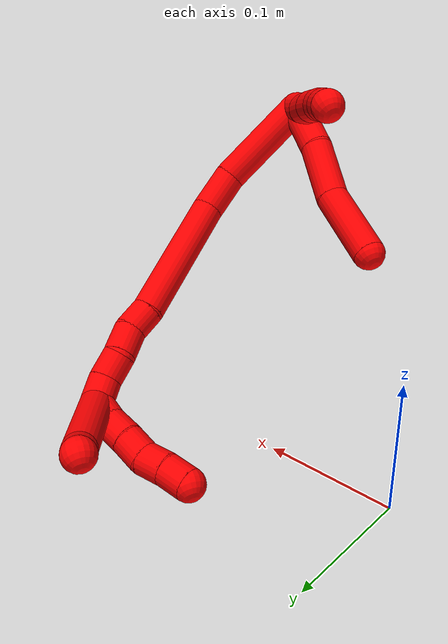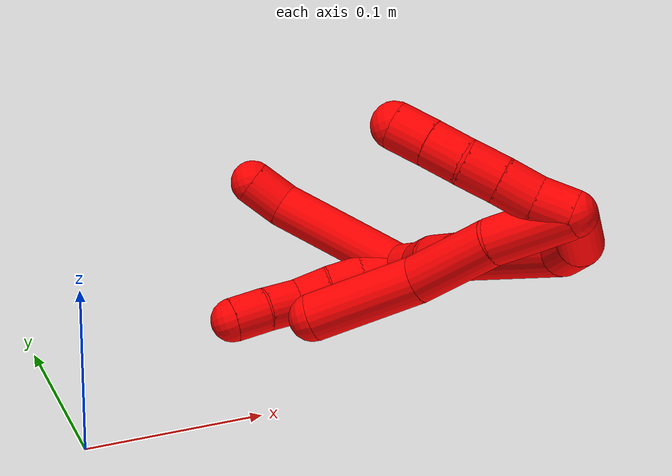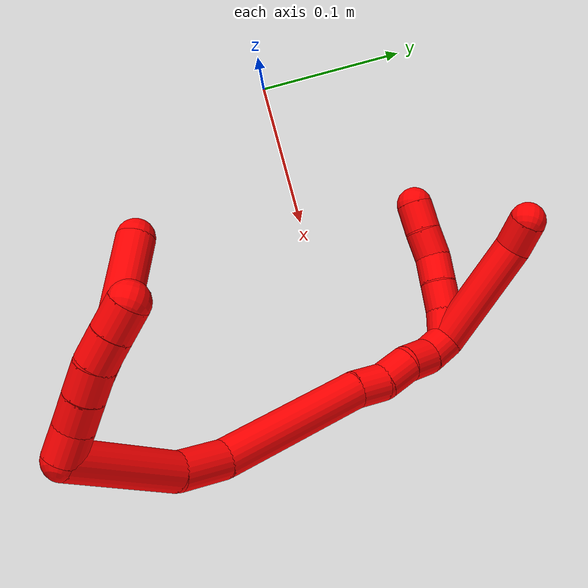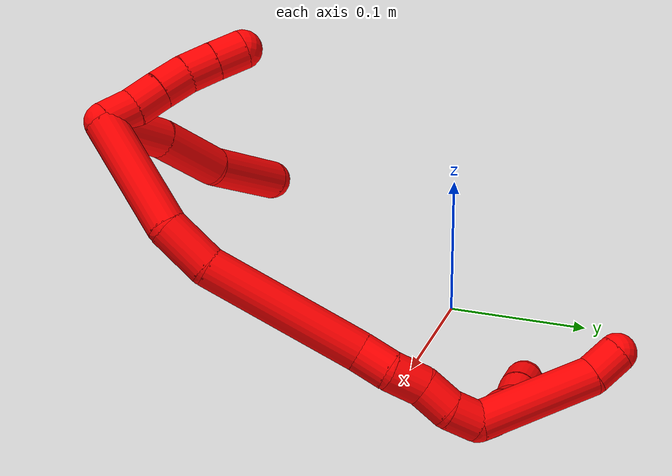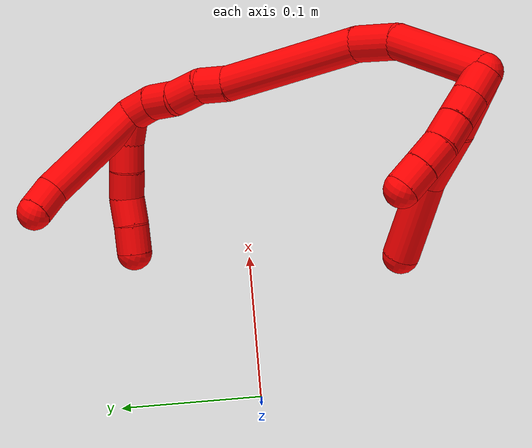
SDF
<sdf version="1.7">
 <world name="default">
  <model name="2">
   <static>0</static>
   <link name="2">
    <collision name="collision-cylinder-e_1_2_8">
     <pose>-0.000176 6.6e-05 -0.022686 -3.1387 -0.007743 2.42687</pose>
     <geometry><cylinder><radius>0.0125</radius><length>0.045374</length></cylinder></geometry>
     <surface>
      <friction><ode><mu>1.16</mu><mu2>1.16</mu2><slip1>0</slip1><slip2>0</slip2></ode></friction>
      <contact><ode><kp>1e+06</kp><kd>1</kd><max_vel>0</max_vel><min_depth>0.001</min_depth></ode></contact>
     </surface>
    </collision>
    <visual name="visual-cylinder-e_1_2_8">
     <pose>-0.000176 6.6e-05 -0.022686 -3.1387 -0.007743 2.42687</pose>
     <geometry><cylinder><radius>0.0125</radius><length>0.045374</length></cylinder></geometry>
     <material><ambient>1 0 0 1</ambient></material>
    </visual>
    <collision name="collision-cylinder-e_2_8_9">
     <pose>0.000243 0.00427 -0.068212 -2.96234 0.025583 -0.282789</pose>
     <geometry><cylinder><radius>0.0125</radius><length>0.046439</length></cylinder></geometry>
     <surface>
      <friction><ode><mu>1.16</mu><mu2>1.16</mu2><slip1>0</slip1><slip2>0</slip2></ode></friction>
      <contact><ode><kp>1e+06</kp><kd>1</kd><max_vel>0</max_vel><min_depth>0.001</min_depth></ode></contact>
     </surface>
    </collision>
    <visual name="visual-cylinder-e_2_8_9">
     <pose>0.000243 0.00427 -0.068212 -2.96234 0.025583 -0.282789</pose>
     <geometry><cylinder><radius>0.0125</radius><length>0.046439</length></cylinder></geometry>
     <material><ambient>1 0 0 1</ambient></material>
    </visual>
    <collision name="collision-cylinder-e_3_9_6">
     <pose>0.002739 0.006447 -0.120017 3.07397 0.065442 1.53797</pose>
     <geometry><cylinder><radius>0.0125</radius><length>0.058188</length></cylinder></geometry>
     <surface>
      <friction><ode><mu>1.16</mu><mu2>1.16</mu2><slip1>0</slip1><slip2>0</slip2></ode></friction>
      <contact><ode><kp>1e+06</kp><kd>1</kd><max_vel>0</max_vel><min_depth>0.001</min_depth></ode></contact>
     </surface>
    </collision>
    <visual name="visual-cylinder-e_3_9_6">
     <pose>0.002739 0.006447 -0.120017 3.07397 0.065442 1.53797</pose>
     <geometry><cylinder><radius>0.0125</radius><length>0.058188</length></cylinder></geometry>
     <material><ambient>1 0 0 1</ambient></material>
    </visual>
    <collision name="collision-cylinder-e_1_2_10">
     <pose>-0.004323 -0.005039 -0.007478 2.54862 -0.447001 -1.27936</pose>
     <geometry><cylinder><radius>0.0125</radius><length>0.02</length></cylinder></geometry>
     <surface>
      <friction><ode><mu>1.16</mu><mu2>1.16</mu2><slip1>0</slip1><slip2>0</slip2></ode></friction>
      <contact><ode><kp>1e+06</kp><kd>1</kd><max_vel>0</max_vel><min_depth>0.001</min_depth></ode></contact>
     </surface>
    </collision>
    <visual name="visual-cylinder-e_1_2_10">
     <pose>-0.004323 -0.005039 -0.007478 2.54862 -0.447001 -1.27936</pose>
     <geometry><cylinder><radius>0.0125</radius><length>0.02</length></cylinder></geometry>
     <material><ambient>1 0 0 1</ambient></material>
    </visual>
    <collision name="collision-cylinder-e_2_10_11">
     <pose>-0.013597 -0.016018 -0.021296 2.38877 -0.518051 -1.18116</pose>
     <geometry><cylinder><radius>0.0125</radius><length>0.02</length></cylinder></geometry>
     <surface>
      <friction><ode><mu>1.16</mu><mu2>1.16</mu2><slip1>0</slip1><slip2>0</slip2></ode></friction>
      <contact><ode><kp>1e+06</kp><kd>1</kd><max_vel>0</max_vel><min_depth>0.001</min_depth></ode></contact>
     </surface>
    </collision>
    <visual name="visual-cylinder-e_2_10_11">
     <pose>-0.013597 -0.016018 -0.021296 2.38877 -0.518051 -1.18116</pose>
     <geometry><cylinder><radius>0.0125</radius><length>0.02</length></cylinder></geometry>
     <material><ambient>1 0 0 1</ambient></material>
    </visual>
    <collision name="collision-cylinder-e_3_11_12">
     <pose>-0.023379 -0.027667 -0.034275 2.43142 -0.504126 -1.21411</pose>
     <geometry><cylinder><radius>0.0125</radius><length>0.02</length></cylinder></geometry>
     <surface>
      <friction><ode><mu>1.16</mu><mu2>1.16</mu2><slip1>0</slip1><slip2>0</slip2></ode></friction>
      <contact><ode><kp>1e+06</kp><kd>1</kd><max_vel>0</max_vel><min_depth>0.001</min_depth></ode></contact>
     </surface>
    </collision>
    <visual name="visual-cylinder-e_3_11_12">
     <pose>-0.023379 -0.027667 -0.034275 2.43142 -0.504126 -1.21411</pose>
     <geometry><cylinder><radius>0.0125</radius><length>0.02</length></cylinder></geometry>
     <material><ambient>1 0 0 1</ambient></material>
    </visual>
    <collision name="collision-cylinder-e_4_12_13">
     <pose>-0.033949 -0.037791 -0.047811 2.57214 -0.611335 -1.646</pose>
     <geometry><cylinder><radius>0.0125</radius><length>0.02</length></cylinder></geometry>
     <surface>
      <friction><ode><mu>1.16</mu><mu2>1.16</mu2><slip1>0</slip1><slip2>0</slip2></ode></friction>
      <contact><ode><kp>1e+06</kp><kd>1</kd><max_vel>0</max_vel><min_depth>0.001</min_depth></ode></contact>
     </surface>
    </collision>
    <visual name="visual-cylinder-e_4_12_13">
     <pose>-0.033949 -0.037791 -0.047811 2.57214 -0.611335 -1.646</pose>
     <geometry><cylinder><radius>0.0125</radius><length>0.02</length></cylinder></geometry>
     <material><ambient>1 0 0 1</ambient></material>
    </visual>
    <collision name="collision-cylinder-e_5_13_5">
     <pose>-0.045408 -0.04642 -0.061746 2.60205 -0.608833 -1.69817</pose>
     <geometry><cylinder><radius>0.0125</radius><length>0.02</length></cylinder></geometry>
     <surface>
      <friction><ode><mu>1.16</mu><mu2>1.16</mu2><slip1>0</slip1><slip2>0</slip2></ode></friction>
      <contact><ode><kp>1e+06</kp><kd>1</kd><max_vel>0</max_vel><min_depth>0.001</min_depth></ode></contact>
     </surface>
    </collision>
    <visual name="visual-cylinder-e_5_13_5">
     <pose>-0.045408 -0.04642 -0.061746 2.60205 -0.608833 -1.69817</pose>
     <geometry><cylinder><radius>0.0125</radius><length>0.02</length></cylinder></geometry>
     <material><ambient>1 0 0 1</ambient></material>
    </visual>
    <collision name="collision-cylinder-e_1_2_14">
     <pose>-0.01419 0.034035 -0.011916 -1.90757 -0.374897 0.522523</pose>
     <geometry><cylinder><radius>0.0125</radius><length>0.077504</length></cylinder></geometry>
     <surface>
      <friction><ode><mu>1.16</mu><mu2>1.16</mu2><slip1>0</slip1><slip2>0</slip2></ode></friction>
      <contact><ode><kp>1e+06</kp><kd>1</kd><max_vel>0</max_vel><min_depth>0.001</min_depth></ode></contact>
     </surface>
    </collision>
    <visual name="visual-cylinder-e_1_2_14">
     <pose>-0.01419 0.034035 -0.011916 -1.90757 -0.374897 0.522523</pose>
     <geometry><cylinder><radius>0.0125</radius><length>0.077504</length></cylinder></geometry>
     <material><ambient>1 0 0 1</ambient></material>
    </visual>
    <collision name="collision-cylinder-e_2_14_15">
     <pose>-0.03524 0.080024 -0.033467 -2.24912 -0.420183 0.838564</pose>
     <geometry><cylinder><radius>0.0125</radius><length>0.033634</length></cylinder></geometry>
     <surface>
      <friction><ode><mu>1.16</mu><mu2>1.16</mu2><slip1>0</slip1><slip2>0</slip2></ode></friction>
      <contact><ode><kp>1e+06</kp><kd>1</kd><max_vel>0</max_vel><min_depth>0.001</min_depth></ode></contact>
     </surface>
    </collision>
    <visual name="visual-cylinder-e_2_14_15">
     <pose>-0.03524 0.080024 -0.033467 -2.24912 -0.420183 0.838564</pose>
     <geometry><cylinder><radius>0.0125</radius><length>0.033634</length></cylinder></geometry>
     <material><ambient>1 0 0 1</ambient></material>
    </visual>
    <collision name="collision-cylinder-e_3_15_16">
     <pose>-0.067892 0.117674 -0.080021 -2.5336 -0.520624 1.40785</pose>
     <geometry><cylinder><radius>0.0125</radius><length>0.103701</length></cylinder></geometry>
     <surface>
      <friction><ode><mu>1.16</mu><mu2>1.16</mu2><slip1>0</slip1><slip2>0</slip2></ode></friction>
      <contact><ode><kp>1e+06</kp><kd>1</kd><max_vel>0</max_vel><min_depth>0.001</min_depth></ode></contact>
     </surface>
    </collision>
    <visual name="visual-cylinder-e_3_15_16">
     <pose>-0.067892 0.117674 -0.080021 -2.5336 -0.520624 1.40785</pose>
     <geometry><cylinder><radius>0.0125</radius><length>0.103701</length></cylinder></geometry>
     <material><ambient>1 0 0 1</ambient></material>
    </visual>
    <collision name="collision-cylinder-e_4_16_17">
     <pose>-0.10001 0.149501 -0.122982 -2.34863 -0.633755 1.32895</pose>
     <geometry><cylinder><radius>0.0125</radius><length>0.021367</length></cylinder></geometry>
     <surface>
      <friction><ode><mu>1.16</mu><mu2>1.16</mu2><slip1>0</slip1><slip2>0</slip2></ode></friction>
      <contact><ode><kp>1e+06</kp><kd>1</kd><max_vel>0</max_vel><min_depth>0.001</min_depth></ode></contact>
     </surface>
    </collision>
    <visual name="visual-cylinder-e_4_16_17">
     <pose>-0.10001 0.149501 -0.122982 -2.34863 -0.633755 1.32895</pose>
     <geometry><cylinder><radius>0.0125</radius><length>0.021367</length></cylinder></geometry>
     <material><ambient>1 0 0 1</ambient></material>
    </visual>
    <collision name="collision-cylinder-e_5_17_18">
     <pose>-0.111338 0.160152 -0.138011 -2.67576 -0.461436 1.56096</pose>
     <geometry><cylinder><radius>0.0125</radius><length>0.022468</length></cylinder></geometry>
     <surface>
      <friction><ode><mu>1.16</mu><mu2>1.16</mu2><slip1>0</slip1><slip2>0</slip2></ode></friction>
      <contact><ode><kp>1e+06</kp><kd>1</kd><max_vel>0</max_vel><min_depth>0.001</min_depth></ode></contact>
     </surface>
    </collision>
    <visual name="visual-cylinder-e_5_17_18">
     <pose>-0.111338 0.160152 -0.138011 -2.67576 -0.461436 1.56096</pose>
     <geometry><cylinder><radius>0.0125</radius><length>0.022468</length></cylinder></geometry>
     <material><ambient>1 0 0 1</ambient></material>
    </visual>
    <collision name="collision-cylinder-e_6_18_19">
     <pose>-0.120409 0.171607 -0.153858 -2.35067 -0.395138 0.894277</pose>
     <geometry><cylinder><radius>0.0125</radius><length>0.02114</length></cylinder></geometry>
     <surface>
      <friction><ode><mu>1.16</mu><mu2>1.16</mu2><slip1>0</slip1><slip2>0</slip2></ode></friction>
      <contact><ode><kp>1e+06</kp><kd>1</kd><max_vel>0</max_vel><min_depth>0.001</min_depth></ode></contact>
     </surface>
    </collision>
    <visual name="visual-cylinder-e_6_18_19">
     <pose>-0.120409 0.171607 -0.153858 -2.35067 -0.395138 0.894277</pose>
     <geometry><cylinder><radius>0.0125</radius><length>0.02114</length></cylinder></geometry>
     <material><ambient>1 0 0 1</ambient></material>
    </visual>
    <collision name="collision-cylinder-e_7_19_1">
     <pose>-0.12862 0.18224 -0.169147 -2.72821 -0.422896 1.59423</pose>
     <geometry><cylinder><radius>0.0125</radius><length>0.020186</length></cylinder></geometry>
     <surface>
      <friction><ode><mu>1.16</mu><mu2>1.16</mu2><slip1>0</slip1><slip2>0</slip2></ode></friction>
      <contact><ode><kp>1e+06</kp><kd>1</kd><max_vel>0</max_vel><min_depth>0.001</min_depth></ode></contact>
     </surface>
    </collision>
    <visual name="visual-cylinder-e_7_19_1">
     <pose>-0.12862 0.18224 -0.169147 -2.72821 -0.422896 1.59423</pose>
     <geometry><cylinder><radius>0.0125</radius><length>0.020186</length></cylinder></geometry>
     <material><ambient>1 0 0 1</ambient></material>
    </visual>
    <collision name="collision-cylinder-e_1_1_20">
     <pose>-0.156574 0.172673 -0.20535 2.69606 -0.658455 -1.97065</pose>
     <geometry><cylinder><radius>0.0125</radius><length>0.07783</length></cylinder></geometry>
     <surface>
      <friction><ode><mu>1.16</mu><mu2>1.16</mu2><slip1>0</slip1><slip2>0</slip2></ode></friction>
      <contact><ode><kp>1e+06</kp><kd>1</kd><max_vel>0</max_vel><min_depth>0.001</min_depth></ode></contact>
     </surface>
    </collision>
    <visual name="visual-cylinder-e_1_1_20">
     <pose>-0.156574 0.172673 -0.20535 2.69606 -0.658455 -1.97065</pose>
     <geometry><cylinder><radius>0.0125</radius><length>0.07783</length></cylinder></geometry>
     <material><ambient>1 0 0 1</ambient></material>
    </visual>
    <collision name="collision-cylinder-e_2_20_4">
     <pose>-0.186719 0.152509 -0.239054 2.28064 -0.608093 -1.19887</pose>
     <geometry><cylinder><radius>0.0125</radius><length>0.02217</length></cylinder></geometry>
     <surface>
      <friction><ode><mu>1.16</mu><mu2>1.16</mu2><slip1>0</slip1><slip2>0</slip2></ode></friction>
      <contact><ode><kp>1e+06</kp><kd>1</kd><max_vel>0</max_vel><min_depth>0.001</min_depth></ode></contact>
     </surface>
    </collision>
    <visual name="visual-cylinder-e_2_20_4">
     <pose>-0.186719 0.152509 -0.239054 2.28064 -0.608093 -1.19887</pose>
     <geometry><cylinder><radius>0.0125</radius><length>0.02217</length></cylinder></geometry>
     <material><ambient>1 0 0 1</ambient></material>
    </visual>
    <collision name="collision-cylinder-e_1_1_21">
     <pose>-0.131473 0.183311 -0.187138 2.87357 0.129255 0.895095</pose>
     <geometry><cylinder><radius>0.0125</radius><length>0.02</length></cylinder></geometry>
     <surface>
      <friction><ode><mu>1.16</mu><mu2>1.16</mu2><slip1>0</slip1><slip2>0</slip2></ode></friction>
      <contact><ode><kp>1e+06</kp><kd>1</kd><max_vel>0</max_vel><min_depth>0.001</min_depth></ode></contact>
     </surface>
    </collision>
    <visual name="visual-cylinder-e_1_1_21">
     <pose>-0.131473 0.183311 -0.187138 2.87357 0.129255 0.895095</pose>
     <geometry><cylinder><radius>0.0125</radius><length>0.02</length></cylinder></geometry>
     <material><ambient>1 0 0 1</ambient></material>
    </visual>
    <collision name="collision-cylinder-e_2_21_22">
     <pose>-0.127859 0.176941 -0.205677 2.74636 0.23461 1.06393</pose>
     <geometry><cylinder><radius>0.0125</radius><length>0.02</length></cylinder></geometry>
     <surface>
      <friction><ode><mu>1.16</mu><mu2>1.16</mu2><slip1>0</slip1><slip2>0</slip2></ode></friction>
      <contact><ode><kp>1e+06</kp><kd>1</kd><max_vel>0</max_vel><min_depth>0.001</min_depth></ode></contact>
     </surface>
    </collision>
    <visual name="visual-cylinder-e_2_21_22">
     <pose>-0.127859 0.176941 -0.205677 2.74636 0.23461 1.06393</pose>
     <geometry><cylinder><radius>0.0125</radius><length>0.02</length></cylinder></geometry>
     <material><ambient>1 0 0 1</ambient></material>
    </visual>
    <collision name="collision-cylinder-e_3_22_23">
     <pose>-0.122916 0.170356 -0.223877 2.84293 0.264977 1.44983</pose>
     <geometry><cylinder><radius>0.0125</radius><length>0.02</length></cylinder></geometry>
     <surface>
      <friction><ode><mu>1.16</mu><mu2>1.16</mu2><slip1>0</slip1><slip2>0</slip2></ode></friction>
      <contact><ode><kp>1e+06</kp><kd>1</kd><max_vel>0</max_vel><min_depth>0.001</min_depth></ode></contact>
     </surface>
    </collision>
    <visual name="visual-cylinder-e_3_22_23">
     <pose>-0.122916 0.170356 -0.223877 2.84293 0.264977 1.44983</pose>
     <geometry><cylinder><radius>0.0125</radius><length>0.02</length></cylinder></geometry>
     <material><ambient>1 0 0 1</ambient></material>
    </visual>
    <collision name="collision-cylinder-e_4_23_24">
     <pose>-0.117226 0.161817 -0.240722 2.49946 0.312121 0.883797</pose>
     <geometry><cylinder><radius>0.0125</radius><length>0.02</length></cylinder></geometry>
     <surface>
      <friction><ode><mu>1.16</mu><mu2>1.16</mu2><slip1>0</slip1><slip2>0</slip2></ode></friction>
      <contact><ode><kp>1e+06</kp><kd>1</kd><max_vel>0</max_vel><min_depth>0.001</min_depth></ode></contact>
     </surface>
    </collision>
    <visual name="visual-cylinder-e_4_23_24">
     <pose>-0.117226 0.161817 -0.240722 2.49946 0.312121 0.883797</pose>
     <geometry><cylinder><radius>0.0125</radius><length>0.02</length></cylinder></geometry>
     <material><ambient>1 0 0 1</ambient></material>
    </visual>
    <collision name="collision-cylinder-e_5_24_3">
     <pose>-0.111154 0.151346 -0.256603 2.61781 0.304805 1.04066</pose>
     <geometry><cylinder><radius>0.0125</radius><length>0.02</length></cylinder></geometry>
     <surface>
      <friction><ode><mu>1.16</mu><mu2>1.16</mu2><slip1>0</slip1><slip2>0</slip2></ode></friction>
      <contact><ode><kp>1e+06</kp><kd>1</kd><max_vel>0</max_vel><min_depth>0.001</min_depth></ode></contact>
     </surface>
    </collision>
    <visual name="visual-cylinder-e_5_24_3">
     <pose>-0.111154 0.151346 -0.256603 2.61781 0.304805 1.04066</pose>
     <geometry><cylinder><radius>0.0125</radius><length>0.02</length></cylinder></geometry>
     <material><ambient>1 0 0 1</ambient></material>
    </visual>
    <collision name="collision-sphere-3">
     <pose>-0.108153 0.146575 -0.264864 0 -0 0</pose>
     <geometry><sphere><radius>0.0125</radius></sphere></geometry>
     <surface>
      <friction><ode><mu>1.16</mu><mu2>1.16</mu2><slip1>0</slip1><slip2>0</slip2></ode></friction>
      <contact><ode><kp>1e+06</kp><kd>1</kd><max_vel>0</max_vel><min_depth>0.001</min_depth></ode></contact>
     </surface>
    </collision>
    <visual name="visual-sphere-3">
     <pose>-0.108153 0.146575 -0.264864 0 -0 0</pose>
     <geometry><sphere><radius>0.0125</radius></sphere></geometry>
     <material><ambient>1 0 0 1</ambient></material>
    </visual>
    <collision name="collision-sphere-24">
     <pose>-0.114155 0.156117 -0.248343 0 -0 0</pose>
     <geometry><sphere><radius>0.0125</radius></sphere></geometry>
     <surface>
      <friction><ode><mu>1.16</mu><mu2>1.16</mu2><slip1>0</slip1><slip2>0</slip2></ode></friction>
      <contact><ode><kp>1e+06</kp><kd>1</kd><max_vel>0</max_vel><min_depth>0.001</min_depth></ode></contact>
     </surface>
    </collision>
    <visual name="visual-sphere-24">
     <pose>-0.114155 0.156117 -0.248343 0 -0 0</pose>
     <geometry><sphere><radius>0.0125</radius></sphere></geometry>
     <material><ambient>1 0 0 1</ambient></material>
    </visual>
    <collision name="collision-sphere-23">
     <pose>-0.120297 0.167516 -0.233101 0 -0 0</pose>
     <geometry><sphere><radius>0.0125</radius></sphere></geometry>
     <surface>
      <friction><ode><mu>1.16</mu><mu2>1.16</mu2><slip1>0</slip1><slip2>0</slip2></ode></friction>
      <contact><ode><kp>1e+06</kp><kd>1</kd><max_vel>0</max_vel><min_depth>0.001</min_depth></ode></contact>
     </surface>
    </collision>
    <visual name="visual-sphere-23">
     <pose>-0.120297 0.167516 -0.233101 0 -0 0</pose>
     <geometry><sphere><radius>0.0125</radius></sphere></geometry>
     <material><ambient>1 0 0 1</ambient></material>
    </visual>
    <collision name="collision-sphere-22">
     <pose>-0.125535 0.173196 -0.214653 0 -0 0</pose>
     <geometry><sphere><radius>0.0125</radius></sphere></geometry>
     <surface>
      <friction><ode><mu>1.16</mu><mu2>1.16</mu2><slip1>0</slip1><slip2>0</slip2></ode></friction>
      <contact><ode><kp>1e+06</kp><kd>1</kd><max_vel>0</max_vel><min_depth>0.001</min_depth></ode></contact>
     </surface>
    </collision>
    <visual name="visual-sphere-22">
     <pose>-0.125535 0.173196 -0.214653 0 -0 0</pose>
     <geometry><sphere><radius>0.0125</radius></sphere></geometry>
     <material><ambient>1 0 0 1</ambient></material>
    </visual>
    <collision name="collision-sphere-21">
     <pose>-0.130184 0.180685 -0.196701 0 -0 0</pose>
     <geometry><sphere><radius>0.0125</radius></sphere></geometry>
     <surface>
      <friction><ode><mu>1.16</mu><mu2>1.16</mu2><slip1>0</slip1><slip2>0</slip2></ode></friction>
      <contact><ode><kp>1e+06</kp><kd>1</kd><max_vel>0</max_vel><min_depth>0.001</min_depth></ode></contact>
     </surface>
    </collision>
    <visual name="visual-sphere-21">
     <pose>-0.130184 0.180685 -0.196701 0 -0 0</pose>
     <geometry><sphere><radius>0.0125</radius></sphere></geometry>
     <material><ambient>1 0 0 1</ambient></material>
    </visual>
    <collision name="collision-sphere-4">
     <pose>-0.193052 0.145609 -0.244983 0 -0 0</pose>
     <geometry><sphere><radius>0.0125</radius></sphere></geometry>
     <surface>
      <friction><ode><mu>1.16</mu><mu2>1.16</mu2><slip1>0</slip1><slip2>0</slip2></ode></friction>
      <contact><ode><kp>1e+06</kp><kd>1</kd><max_vel>0</max_vel><min_depth>0.001</min_depth></ode></contact>
     </surface>
    </collision>
    <visual name="visual-sphere-4">
     <pose>-0.193052 0.145609 -0.244983 0 -0 0</pose>
     <geometry><sphere><radius>0.0125</radius></sphere></geometry>
     <material><ambient>1 0 0 1</ambient></material>
    </visual>
    <collision name="collision-sphere-20">
     <pose>-0.180386 0.159409 -0.233125 0 -0 0</pose>
     <geometry><sphere><radius>0.0125</radius></sphere></geometry>
     <surface>
      <friction><ode><mu>1.16</mu><mu2>1.16</mu2><slip1>0</slip1><slip2>0</slip2></ode></friction>
      <contact><ode><kp>1e+06</kp><kd>1</kd><max_vel>0</max_vel><min_depth>0.001</min_depth></ode></contact>
     </surface>
    </collision>
    <visual name="visual-sphere-20">
     <pose>-0.180386 0.159409 -0.233125 0 -0 0</pose>
     <geometry><sphere><radius>0.0125</radius></sphere></geometry>
     <material><ambient>1 0 0 1</ambient></material>
    </visual>
    <collision name="collision-sphere-11">
     <pose>-0.018549 -0.021958 -0.027636 0 -0 0</pose>
     <geometry><sphere><radius>0.0125</radius></sphere></geometry>
     <surface>
      <friction><ode><mu>1.16</mu><mu2>1.16</mu2><slip1>0</slip1><slip2>0</slip2></ode></friction>
      <contact><ode><kp>1e+06</kp><kd>1</kd><max_vel>0</max_vel><min_depth>0.001</min_depth></ode></contact>
     </surface>
    </collision>
    <visual name="visual-sphere-11">
     <pose>-0.018549 -0.021958 -0.027636 0 -0 0</pose>
     <geometry><sphere><radius>0.0125</radius></sphere></geometry>
     <material><ambient>1 0 0 1</ambient></material>
    </visual>
    <collision name="collision-sphere-10">
     <pose>-0.008645 -0.010078 -0.014956 0 -0 0</pose>
     <geometry><sphere><radius>0.0125</radius></sphere></geometry>
     <surface>
      <friction><ode><mu>1.16</mu><mu2>1.16</mu2><slip1>0</slip1><slip2>0</slip2></ode></friction>
      <contact><ode><kp>1e+06</kp><kd>1</kd><max_vel>0</max_vel><min_depth>0.001</min_depth></ode></contact>
     </surface>
    </collision>
    <visual name="visual-sphere-10">
     <pose>-0.008645 -0.010078 -0.014956 0 -0 0</pose>
     <geometry><sphere><radius>0.0125</radius></sphere></geometry>
     <material><ambient>1 0 0 1</ambient></material>
    </visual>
    <collision name="collision-sphere-6">
     <pose>0.004642 0.004485 -0.148982 0 -0 0</pose>
     <geometry><sphere><radius>0.0125</radius></sphere></geometry>
     <surface>
      <friction><ode><mu>1.16</mu><mu2>1.16</mu2><slip1>0</slip1><slip2>0</slip2></ode></friction>
      <contact><ode><kp>1e+06</kp><kd>1</kd><max_vel>0</max_vel><min_depth>0.001</min_depth></ode></contact>
     </surface>
    </collision>
    <visual name="visual-sphere-6">
     <pose>0.004642 0.004485 -0.148982 0 -0 0</pose>
     <geometry><sphere><radius>0.0125</radius></sphere></geometry>
     <material><ambient>1 0 0 1</ambient></material>
    </visual>
    <collision name="collision-sphere-9">
     <pose>0.000837 0.008408 -0.091052 0 -0 0</pose>
     <geometry><sphere><radius>0.0125</radius></sphere></geometry>
     <surface>
      <friction><ode><mu>1.16</mu><mu2>1.16</mu2><slip1>0</slip1><slip2>0</slip2></ode></friction>
      <contact><ode><kp>1e+06</kp><kd>1</kd><max_vel>0</max_vel><min_depth>0.001</min_depth></ode></contact>
     </surface>
    </collision>
    <visual name="visual-sphere-9">
     <pose>0.000837 0.008408 -0.091052 0 -0 0</pose>
     <geometry><sphere><radius>0.0125</radius></sphere></geometry>
     <material><ambient>1 0 0 1</ambient></material>
    </visual>
    <collision name="collision-sphere-2">
     <geometry><sphere><radius>0.0125</radius></sphere></geometry>
     <surface>
      <friction><ode><mu>1.16</mu><mu2>1.16</mu2><slip1>0</slip1><slip2>0</slip2></ode></friction>
      <contact><ode><kp>1e+06</kp><kd>1</kd><max_vel>0</max_vel><min_depth>0.001</min_depth></ode></contact>
     </surface>
    </collision>
    <visual name="visual-sphere-2">
     <geometry><sphere><radius>0.0125</radius></sphere></geometry>
     <material><ambient>1 0 0 1</ambient></material>
    </visual>
    <collision name="collision-sphere-19">
     <pose>-0.124477 0.178543 -0.160718 0 -0 0</pose>
     <geometry><sphere><radius>0.0125</radius></sphere></geometry>
     <surface>
      <friction><ode><mu>1.16</mu><mu2>1.16</mu2><slip1>0</slip1><slip2>0</slip2></ode></friction>
      <contact><ode><kp>1e+06</kp><kd>1</kd><max_vel>0</max_vel><min_depth>0.001</min_depth></ode></contact>
     </surface>
    </collision>
    <visual name="visual-sphere-19">
     <pose>-0.124477 0.178543 -0.160718 0 -0 0</pose>
     <geometry><sphere><radius>0.0125</radius></sphere></geometry>
     <material><ambient>1 0 0 1</ambient></material>
    </visual>
    <collision name="collision-sphere-8">
     <pose>-0.000351 0.000131 -0.045372 0 -0 0</pose>
     <geometry><sphere><radius>0.0125</radius></sphere></geometry>
     <surface>
      <friction><ode><mu>1.16</mu><mu2>1.16</mu2><slip1>0</slip1><slip2>0</slip2></ode></friction>
      <contact><ode><kp>1e+06</kp><kd>1</kd><max_vel>0</max_vel><min_depth>0.001</min_depth></ode></contact>
     </surface>
    </collision>
    <visual name="visual-sphere-8">
     <pose>-0.000351 0.000131 -0.045372 0 -0 0</pose>
     <geometry><sphere><radius>0.0125</radius></sphere></geometry>
     <material><ambient>1 0 0 1</ambient></material>
    </visual>
    <collision name="collision-sphere-12">
     <pose>-0.02821 -0.033375 -0.040915 0 -0 0</pose>
     <geometry><sphere><radius>0.0125</radius></sphere></geometry>
     <surface>
      <friction><ode><mu>1.16</mu><mu2>1.16</mu2><slip1>0</slip1><slip2>0</slip2></ode></friction>
      <contact><ode><kp>1e+06</kp><kd>1</kd><max_vel>0</max_vel><min_depth>0.001</min_depth></ode></contact>
     </surface>
    </collision>
    <visual name="visual-sphere-12">
     <pose>-0.02821 -0.033375 -0.040915 0 -0 0</pose>
     <geometry><sphere><radius>0.0125</radius></sphere></geometry>
     <material><ambient>1 0 0 1</ambient></material>
    </visual>
    <collision name="collision-sphere-13">
     <pose>-0.039689 -0.042206 -0.054708 0 -0 0</pose>
     <geometry><sphere><radius>0.0125</radius></sphere></geometry>
     <surface>
      <friction><ode><mu>1.16</mu><mu2>1.16</mu2><slip1>0</slip1><slip2>0</slip2></ode></friction>
      <contact><ode><kp>1e+06</kp><kd>1</kd><max_vel>0</max_vel><min_depth>0.001</min_depth></ode></contact>
     </surface>
    </collision>
    <visual name="visual-sphere-13">
     <pose>-0.039689 -0.042206 -0.054708 0 -0 0</pose>
     <geometry><sphere><radius>0.0125</radius></sphere></geometry>
     <material><ambient>1 0 0 1</ambient></material>
    </visual>
    <collision name="collision-sphere-5">
     <pose>-0.051127 -0.050634 -0.068784 0 -0 0</pose>
     <geometry><sphere><radius>0.0125</radius></sphere></geometry>
     <surface>
      <friction><ode><mu>1.16</mu><mu2>1.16</mu2><slip1>0</slip1><slip2>0</slip2></ode></friction>
      <contact><ode><kp>1e+06</kp><kd>1</kd><max_vel>0</max_vel><min_depth>0.001</min_depth></ode></contact>
     </surface>
    </collision>
    <visual name="visual-sphere-5">
     <pose>-0.051127 -0.050634 -0.068784 0 -0 0</pose>
     <geometry><sphere><radius>0.0125</radius></sphere></geometry>
     <material><ambient>1 0 0 1</ambient></material>
    </visual>
    <collision name="collision-sphere-14">
     <pose>-0.02838 0.068069 -0.023832 0 -0 0</pose>
     <geometry><sphere><radius>0.0125</radius></sphere></geometry>
     <surface>
      <friction><ode><mu>1.16</mu><mu2>1.16</mu2><slip1>0</slip1><slip2>0</slip2></ode></friction>
      <contact><ode><kp>1e+06</kp><kd>1</kd><max_vel>0</max_vel><min_depth>0.001</min_depth></ode></contact>
     </surface>
    </collision>
    <visual name="visual-sphere-14">
     <pose>-0.02838 0.068069 -0.023832 0 -0 0</pose>
     <geometry><sphere><radius>0.0125</radius></sphere></geometry>
     <material><ambient>1 0 0 1</ambient></material>
    </visual>
    <collision name="collision-sphere-15">
     <pose>-0.0421 0.091979 -0.043101 0 -0 0</pose>
     <geometry><sphere><radius>0.0125</radius></sphere></geometry>
     <surface>
      <friction><ode><mu>1.16</mu><mu2>1.16</mu2><slip1>0</slip1><slip2>0</slip2></ode></friction>
      <contact><ode><kp>1e+06</kp><kd>1</kd><max_vel>0</max_vel><min_depth>0.001</min_depth></ode></contact>
     </surface>
    </collision>
    <visual name="visual-sphere-15">
     <pose>-0.0421 0.091979 -0.043101 0 -0 0</pose>
     <geometry><sphere><radius>0.0125</radius></sphere></geometry>
     <material><ambient>1 0 0 1</ambient></material>
    </visual>
    <collision name="collision-sphere-16">
     <pose>-0.093683 0.143368 -0.116941 0 -0 0</pose>
     <geometry><sphere><radius>0.0125</radius></sphere></geometry>
     <surface>
      <friction><ode><mu>1.16</mu><mu2>1.16</mu2><slip1>0</slip1><slip2>0</slip2></ode></friction>
      <contact><ode><kp>1e+06</kp><kd>1</kd><max_vel>0</max_vel><min_depth>0.001</min_depth></ode></contact>
     </surface>
    </collision>
    <visual name="visual-sphere-16">
     <pose>-0.093683 0.143368 -0.116941 0 -0 0</pose>
     <geometry><sphere><radius>0.0125</radius></sphere></geometry>
     <material><ambient>1 0 0 1</ambient></material>
    </visual>
    <collision name="collision-sphere-17">
     <pose>-0.106336 0.155634 -0.129023 0 -0 0</pose>
     <geometry><sphere><radius>0.0125</radius></sphere></geometry>
     <surface>
      <friction><ode><mu>1.16</mu><mu2>1.16</mu2><slip1>0</slip1><slip2>0</slip2></ode></friction>
      <contact><ode><kp>1e+06</kp><kd>1</kd><max_vel>0</max_vel><min_depth>0.001</min_depth></ode></contact>
     </surface>
    </collision>
    <visual name="visual-sphere-17">
     <pose>-0.106336 0.155634 -0.129023 0 -0 0</pose>
     <geometry><sphere><radius>0.0125</radius></sphere></geometry>
     <material><ambient>1 0 0 1</ambient></material>
    </visual>
    <collision name="collision-sphere-18">
     <pose>-0.11634 0.16467 -0.146998 0 -0 0</pose>
     <geometry><sphere><radius>0.0125</radius></sphere></geometry>
     <surface>
      <friction><ode><mu>1.16</mu><mu2>1.16</mu2><slip1>0</slip1><slip2>0</slip2></ode></friction>
      <contact><ode><kp>1e+06</kp><kd>1</kd><max_vel>0</max_vel><min_depth>0.001</min_depth></ode></contact>
     </surface>
    </collision>
    <visual name="visual-sphere-18">
     <pose>-0.11634 0.16467 -0.146998 0 -0 0</pose>
     <geometry><sphere><radius>0.0125</radius></sphere></geometry>
     <material><ambient>1 0 0 1</ambient></material>
    </visual>
    <collision name="collision-sphere-1">
     <pose>-0.132762 0.185938 -0.177576 0 -0 0</pose>
     <geometry><sphere><radius>0.0125</radius></sphere></geometry>
     <surface>
      <friction><ode><mu>1.16</mu><mu2>1.16</mu2><slip1>0</slip1><slip2>0</slip2></ode></friction>
      <contact><ode><kp>1e+06</kp><kd>1</kd><max_vel>0</max_vel><min_depth>0.001</min_depth></ode></contact>
     </surface>
    </collision>
    <visual name="visual-sphere-1">
     <pose>-0.132762 0.185938 -0.177576 0 -0 0</pose>
     <geometry><sphere><radius>0.0125</radius></sphere></geometry>
     <material><ambient>1 0 0 1</ambient></material>
    </visual>
    <inertial>
     <pose>-0.066526 0.084326 -0.107918 0 -0 0</pose>
     <mass>0.75</mass>
     <inertia>
      <ixx>0.00013</ixx>
      <ixy>0</ixy>
      <ixz>0</ixz>
      <iyy>0.000136</iyy>
      <iyz>0</iyz>
      <izz>-1.7e-05</izz>
     </inertia>
    </inertial>
   </link>
   <pose>0.209548 -0.162786 0.196065 -1.04957 0.457559 -1.8219</pose>
  </model>
 </world>
</sdf>
